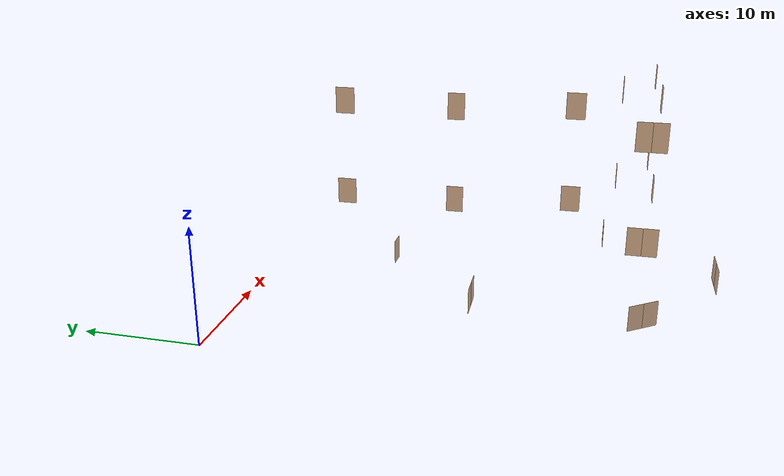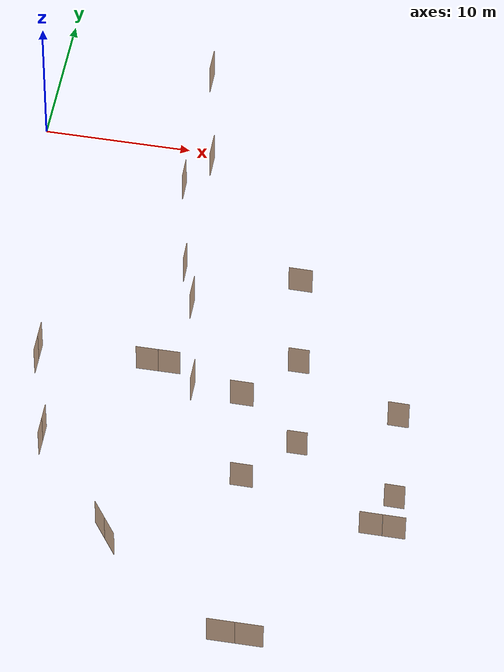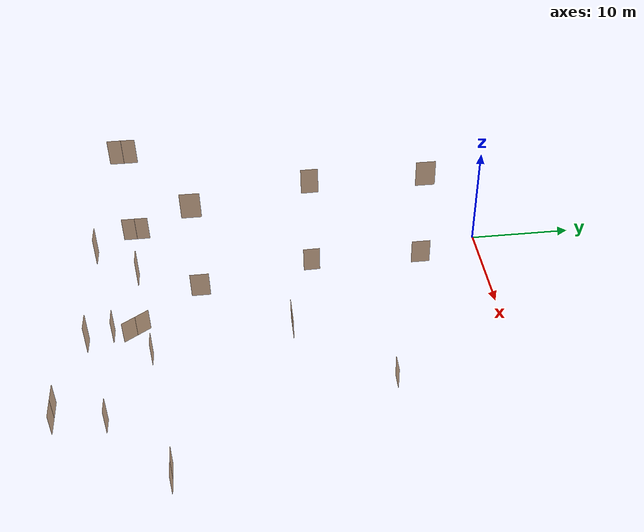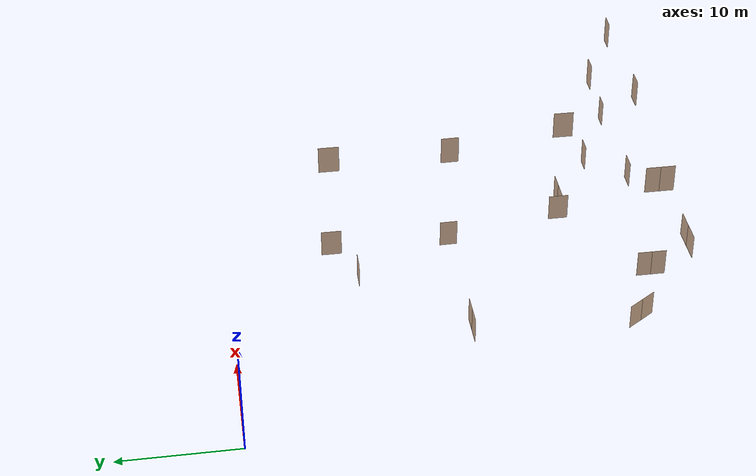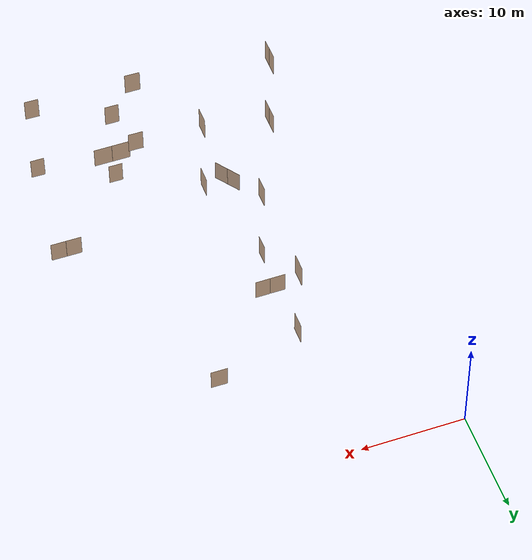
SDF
<sdf version="1.7">
 <world name="world">
  <physics type="ode">
   <max_step_size>0.001</max_step_size>
   <real_time_update_rate>1000</real_time_update_rate>
   <ode>
    <solver><iters>150</iters><sor>1.3</sor></solver>
    <constraints><erp>0.2</erp><cfm>0.0</cfm></constraints>
   </ode>
  </physics>
  <scene><ambient>0.8 0.8 0.8 1.0</ambient><background>0 0 0</background><grid>false</grid></scene>
  <include><uri>model://sun</uri></include>
  <model name="L1_door1">
   <pose>10.753654762321071 -33.79999264551465 0.0 0 0 2.1904910296829736</pose>
   <link name="right">
    <pose>0.7204413525969184 0 1.11 0 0 0</pose>
    <visual name="right_visual">
     <geometry><box><size>1.4308827051938369 0.03 2.2</size></box></geometry>
     <material><ambient>0.5 0.25 0 0.6</ambient><diffuse>0.5 0.25 0 0.6</diffuse></material>
    </visual>
    <inertial>
     <mass>50.0</mass>
     <inertia><ixx>20.17041666666667</ixx><iyy>28.69760548342847</iyy><izz>8.534688816761804</izz></inertia>
    </inertial>
   </link>
   <joint name="right_joint" type="revolute">
    <parent>world</parent>
    <child>right</child>
    <axis><xyz>0 0 1</xyz><limit><lower>0</lower><upper>1.57</upper></limit></axis>
    <pose>0.7204413525969184 0 0 0 0 0</pose>
   </joint>
   <link name="left">
    <pose>-0.7204413525969184 0 1.11 0 0 0</pose>
    <visual name="left_visual">
     <geometry><box><size>1.4308827051938369 0.03 2.2</size></box></geometry>
     <material><ambient>0.5 0.25 0 0.6</ambient><diffuse>0.5 0.25 0 0.6</diffuse></material>
    </visual>
    <inertial>
     <mass>50.0</mass>
     <inertia><ixx>20.17041666666667</ixx><iyy>28.69760548342847</iyy><izz>8.534688816761804</izz></inertia>
    </inertial>
   </link>
   <joint name="left_joint" type="revolute">
    <parent>world</parent>
    <child>left</child>
    <axis><xyz>0 0 1</xyz><limit><lower>-1.57</lower><upper>0</upper></limit></axis>
    <pose>-0.7204413525969184 0 0 0 0 0</pose>
   </joint>
  </model>
  <model name="L1_door2">
   <pose>11.515053553551752 -19.600764056030513 0.0 0 0 -3.1369488994516814</pose>
   <link name="right">
    <pose>0.7374085791900343 0 1.11 0 0 0</pose>
    <visual name="right_visual">
     <geometry><box><size>1.4648171583800687 0.03 2.2</size></box></geometry>
     <material><ambient>0.5 0.25 0 0.6</ambient><diffuse>0.5 0.25 0 0.6</diffuse></material>
    </visual>
    <inertial>
     <mass>50.0</mass>
     <inertia><ixx>20.17041666666667</ixx><iyy>29.107038781186084</iyy><izz>8.944122114519415</izz></inertia>
    </inertial>
   </link>
   <joint name="right_joint" type="prismatic">
    <parent>world</parent>
    <child>right</child>
    <axis>
     <xyz>1 0 0</xyz>
     <limit><lower>0.0</lower><upper>1.4748171583800687</upper><effort>500.0</effort></limit>
    </axis>
   </joint>
   <link name="left">
    <pose>-0.7374085791900343 0 1.11 0 0 0</pose>
    <visual name="left_visual">
     <geometry><box><size>1.4648171583800687 0.03 2.2</size></box></geometry>
     <material><ambient>0.5 0.25 0 0.6</ambient><diffuse>0.5 0.25 0 0.6</diffuse></material>
    </visual>
    <inertial>
     <mass>50.0</mass>
     <inertia><ixx>20.17041666666667</ixx><iyy>29.107038781186084</iyy><izz>8.944122114519415</izz></inertia>
    </inertial>
   </link>
   <joint name="left_joint" type="prismatic">
    <parent>world</parent>
    <child>left</child>
    <axis>
     <xyz>1 0 0</xyz>
     <limit><lower>-1.4748171583800687</lower><upper>0.0</upper><effort>500.0</effort></limit>
    </axis>
   </joint>
  </model>
  <model name="L1_door3">
   <pose>20.334155710474544 -40.40725483879361 0.0 0 0 -3.137402798278724</pose>
   <link name="right">
    <pose>0.9069965354571369 0 1.11 0 0 0</pose>
    <visual name="right_visual">
     <geometry><box><size>1.8039930709142737 0.03 2.2</size></box></geometry>
     <material><ambient>0.5 0.25 0 0.6</ambient><diffuse>0.5 0.25 0 0.6</diffuse></material>
    </visual>
    <inertial>
     <mass>50.0</mass>
     <inertia><ixx>20.17041666666667</ixx><iyy>33.726629166277974</iyy><izz>13.563712499611302</izz></inertia>
    </inertial>
   </link>
   <joint name="right_joint" type="prismatic">
    <parent>world</parent>
    <child>right</child>
    <axis>
     <xyz>1 0 0</xyz>
     <limit><lower>0.0</lower><upper>1.8139930709142738</upper><effort>500.0</effort></limit>
    </axis>
   </joint>
   <link name="left">
    <pose>-0.9069965354571369 0 1.11 0 0 0</pose>
    <visual name="left_visual">
     <geometry><box><size>1.8039930709142737 0.03 2.2</size></box></geometry>
     <material><ambient>0.5 0.25 0 0.6</ambient><diffuse>0.5 0.25 0 0.6</diffuse></material>
    </visual>
    <inertial>
     <mass>50.0</mass>
     <inertia><ixx>20.17041666666667</ixx><iyy>33.726629166277974</iyy><izz>13.563712499611302</izz></inertia>
    </inertial>
   </link>
   <joint name="left_joint" type="prismatic">
    <parent>world</parent>
    <child>left</child>
    <axis>
     <xyz>1 0 0</xyz>
     <limit><lower>-1.8139930709142738</lower><upper>0.0</upper><effort>500.0</effort></limit>
    </axis>
   </joint>
  </model>
  <model name="L1_door4">
   <pose>19.549120677562087 -11.10939551168469 0.0 0 0 -0.009497018345977264</pose>
   <link name="right">
    <pose>0 0 1.11 0 0 0</pose>
    <visual name="right_visual">
     <geometry><box><size>1.5905993122484277 0.03 2.2</size></box></geometry>
     <material><ambient>0.5 0.25 0 0.6</ambient><diffuse>0.5 0.25 0 0.6</diffuse></material>
    </visual>
    <inertial>
     <mass>50.0</mass>
     <inertia><ixx>20.17041666666667</ixx><iyy>30.70835905052155</iyy><izz>10.545442383854882</izz></inertia>
    </inertial>
   </link>
   <joint name="right_joint" type="revolute">
    <parent>world</parent>
    <child>right</child>
    <axis><xyz>0 0 1</xyz><limit><lower>0</lower><upper>1.57</upper></limit></axis>
    <pose>0.8002996561242138 0 0 0 0 0</pose>
   </joint>
  </model>
  <model name="L1_door5">
   <pose>28.079493196697264 -30.43738230505557 0.0 0 0 -0.0023958500301941633</pose>
   <link name="right">
    <pose>0.7494993011996198 0 1.11 0 0 0</pose>
    <visual name="right_visual">
     <geometry><box><size>1.4889986023992396 0.03 2.2</size></box></geometry>
     <material><ambient>0.5 0.25 0 0.6</ambient><diffuse>0.5 0.25 0 0.6</diffuse></material>
    </visual>
    <inertial>
     <mass>50.0</mass>
     <inertia><ixx>20.17041666666667</ixx><iyy>29.404653491445373</iyy><izz>9.241736824778705</izz></inertia>
    </inertial>
   </link>
   <joint name="right_joint" type="prismatic">
    <parent>world</parent>
    <child>right</child>
    <axis>
     <xyz>1 0 0</xyz>
     <limit><lower>0.0</lower><upper>1.4989986023992397</upper><effort>500.0</effort></limit>
    </axis>
   </joint>
   <link name="left">
    <pose>-0.7494993011996198 0 1.11 0 0 0</pose>
    <visual name="left_visual">
     <geometry><box><size>1.4889986023992396 0.03 2.2</size></box></geometry>
     <material><ambient>0.5 0.25 0 0.6</ambient><diffuse>0.5 0.25 0 0.6</diffuse></material>
    </visual>
    <inertial>
     <mass>50.0</mass>
     <inertia><ixx>20.17041666666667</ixx><iyy>29.404653491445373</iyy><izz>9.241736824778705</izz></inertia>
    </inertial>
   </link>
   <joint name="left_joint" type="prismatic">
    <parent>world</parent>
    <child>left</child>
    <axis>
     <xyz>1 0 0</xyz>
     <limit><lower>-1.4989986023992397</lower><upper>0.0</upper><effort>500.0</effort></limit>
    </axis>
   </joint>
  </model>
  <model name="L2_door2">
   <pose>6.76857286388343 -32.90682600516501 8.0 0 0 1.571612558028263</pose>
   <link name="right">
    <pose>0.5675078680191911 0 1.11 0 0 0</pose>
    <visual name="right_visual">
     <geometry><box><size>1.1250157360383821 0.03 2.2</size></box></geometry>
     <material><ambient>0.5 0.25 0 0.6</ambient><diffuse>0.5 0.25 0 0.6</diffuse></material>
    </visual>
    <inertial>
     <mass>50.0</mass>
     <inertia><ixx>20.17041666666667</ixx><iyy>25.44025169305827</iyy><izz>5.277335026391595</izz></inertia>
    </inertial>
   </link>
   <joint name="right_joint" type="revolute">
    <parent>world</parent>
    <child>right</child>
    <axis><xyz>0 0 -1</xyz><limit><lower>0</lower><upper>1.57</upper></limit></axis>
    <pose>0.5675078680191911 0 0 0 0 0</pose>
   </joint>
   <link name="left">
    <pose>-0.5675078680191911 0 1.11 0 0 0</pose>
    <visual name="left_visual">
     <geometry><box><size>1.1250157360383821 0.03 2.2</size></box></geometry>
     <material><ambient>0.5 0.25 0 0.6</ambient><diffuse>0.5 0.25 0 0.6</diffuse></material>
    </visual>
    <inertial>
     <mass>50.0</mass>
     <inertia><ixx>20.17041666666667</ixx><iyy>25.44025169305827</iyy><izz>5.277335026391595</izz></inertia>
    </inertial>
   </link>
   <joint name="left_joint" type="revolute">
    <parent>world</parent>
    <child>left</child>
    <axis><xyz>0 0 -1</xyz><limit><lower>-1.57</lower><upper>0</upper></limit></axis>
    <pose>-0.5675078680191911 0 0 0 0 0</pose>
   </joint>
  </model>
  <model name="L2_door5">
   <pose>19.62055855578882 -34.21478433126707 8.0 0 0 3.1365461417546308</pose>
   <link name="right">
    <pose>0 0 1.11 0 0 0</pose>
    <visual name="right_visual">
     <geometry><box><size>1.4278667928054123 0.03 2.2</size></box></geometry>
     <material><ambient>0.5 0.25 0 0.6</ambient><diffuse>0.5 0.25 0 0.6</diffuse></material>
    </visual>
    <inertial>
     <mass>50.0</mass>
     <inertia><ixx>20.17041666666667</ixx><iyy>28.661681574985064</iyy><izz>8.498764908318392</izz></inertia>
    </inertial>
   </link>
   <joint name="right_joint" type="revolute">
    <parent>world</parent>
    <child>right</child>
    <axis><xyz>0 0 -1</xyz><limit><lower>0</lower><upper>1.57</upper></limit></axis>
    <pose>0.7189333964027061 0 0 0 0 0</pose>
   </joint>
  </model>
  <model name="L2_door9">
   <pose>13.018848337594756 -17.76158217016259 8.0 0 0 1.5874688733681936</pose>
   <link name="right">
    <pose>0 0 1.11 0 0 0</pose>
    <visual name="right_visual">
     <geometry><box><size>1.382945881897145 0.03 2.2</size></box></geometry>
     <material><ambient>0.5 0.25 0 0.6</ambient><diffuse>0.5 0.25 0 0.6</diffuse></material>
    </visual>
    <inertial>
     <mass>50.0</mass>
     <inertia><ixx>20.17041666666667</ixx><iyy>28.13558046773447</iyy><izz>7.9726638010677995</izz></inertia>
    </inertial>
   </link>
   <joint name="right_joint" type="revolute">
    <parent>world</parent>
    <child>right</child>
    <axis><xyz>0 0 -1</xyz><limit><lower>0</lower><upper>1.57</upper></limit></axis>
    <pose>0.6964729409485725 0 0 0 0 0</pose>
   </joint>
  </model>
  <model name="L2_door11">
   <pose>13.070832545372092 -8.29507317951618 8.0 0 0 1.571612558028263</pose>
   <link name="right">
    <pose>0 0 1.11 0 0 0</pose>
    <visual name="right_visual">
     <geometry><box><size>1.5950330216253457 0.03 2.2</size></box></geometry>
     <material><ambient>0.5 0.25 0 0.6</ambient><diffuse>0.5 0.25 0 0.6</diffuse></material>
    </visual>
    <inertial>
     <mass>50.0</mass>
     <inertia><ixx>20.17041666666667</ixx><iyy>30.767209750313672</iyy><izz>10.604293083647002</izz></inertia>
    </inertial>
   </link>
   <joint name="right_joint" type="revolute">
    <parent>world</parent>
    <child>right</child>
    <axis><xyz>0 0 -1</xyz><limit><lower>0</lower><upper>1.57</upper></limit></axis>
    <pose>0.8025165108126728 0 0 0 0 0</pose>
   </joint>
  </model>
  <model name="L2_door12">
   <pose>15.28470442617677 -27.2761317707633 8.0 0 0 1.571612558028262</pose>
   <link name="right">
    <pose>0 0 1.11 0 0 0</pose>
    <visual name="right_visual">
     <geometry><box><size>1.5658659299508506 0.03 2.2</size></box></geometry>
     <material><ambient>0.5 0.25 0 0.6</ambient><diffuse>0.5 0.25 0 0.6</diffuse></material>
    </visual>
    <inertial>
     <mass>50.0</mass>
     <inertia><ixx>20.17041666666667</ixx><iyy>30.38306712742018</iyy><izz>10.22015046075351</izz></inertia>
    </inertial>
   </link>
   <joint name="right_joint" type="revolute">
    <parent>world</parent>
    <child>right</child>
    <axis><xyz>0 0 1</xyz><limit><lower>0</lower><upper>1.57</upper></limit></axis>
    <pose>0.7879329649754253 0 0 0 0 0</pose>
   </joint>
  </model>
  <model name="L2_door14">
   <pose>22.582882547846204 -31.092638612981972 8.0 0 0 3.137779488569298</pose>
   <link name="right">
    <pose>0 0 1.11 0 0 0</pose>
    <visual name="right_visual">
     <geometry><box><size>1.2889329745237348 0.03 2.2</size></box></geometry>
     <material><ambient>0.5 0.25 0 0.6</ambient><diffuse>0.5 0.25 0 0.6</diffuse></material>
    </visual>
    <inertial>
     <mass>50.0</mass>
     <inertia><ixx>20.17041666666667</ixx><iyy>27.088950886727517</iyy><izz>6.926034220060845</izz></inertia>
    </inertial>
   </link>
   <joint name="right_joint" type="revolute">
    <parent>world</parent>
    <child>right</child>
    <axis><xyz>0 0 1</xyz><limit><lower>0</lower><upper>1.57</upper></limit></axis>
    <pose>0.6494664872618674 0 0 0 0 0</pose>
   </joint>
  </model>
  <model name="L2_door15">
   <pose>29.19689685453295 -34.1844883615378 8.0 0 0 3.1287318603676484</pose>
   <link name="right">
    <pose>0 0 1.11 0 0 0</pose>
    <visual name="right_visual">
     <geometry><box><size>1.2884785147293154 0.03 2.2</size></box></geometry>
     <material><ambient>0.5 0.25 0 0.6</ambient><diffuse>0.5 0.25 0 0.6</diffuse></material>
    </visual>
    <inertial>
     <mass>50.0</mass>
     <inertia><ixx>20.17041666666667</ixx><iyy>27.0840703454961</iyy><izz>6.921153678829428</izz></inertia>
    </inertial>
   </link>
   <joint name="right_joint" type="revolute">
    <parent>world</parent>
    <child>right</child>
    <axis><xyz>0 0 -1</xyz><limit><lower>0</lower><upper>1.57</upper></limit></axis>
    <pose>0.6492392573646577 0 0 0 0 0</pose>
   </joint>
  </model>
  <model name="L3_door2">
   <pose>6.76857286388343 -32.90682600516501 16.0 0 0 1.571612558028263</pose>
   <link name="right">
    <pose>0.5675078680191911 0 1.11 0 0 0</pose>
    <visual name="right_visual">
     <geometry><box><size>1.1250157360383821 0.03 2.2</size></box></geometry>
     <material><ambient>0.5 0.25 0 0.6</ambient><diffuse>0.5 0.25 0 0.6</diffuse></material>
    </visual>
    <inertial>
     <mass>50.0</mass>
     <inertia><ixx>20.17041666666667</ixx><iyy>25.44025169305827</iyy><izz>5.277335026391595</izz></inertia>
    </inertial>
   </link>
   <joint name="right_joint" type="revolute">
    <parent>world</parent>
    <child>right</child>
    <axis><xyz>0 0 -1</xyz><limit><lower>0</lower><upper>1.57</upper></limit></axis>
    <pose>0.5675078680191911 0 0 0 0 0</pose>
   </joint>
   <link name="left">
    <pose>-0.5675078680191911 0 1.11 0 0 0</pose>
    <visual name="left_visual">
     <geometry><box><size>1.1250157360383821 0.03 2.2</size></box></geometry>
     <material><ambient>0.5 0.25 0 0.6</ambient><diffuse>0.5 0.25 0 0.6</diffuse></material>
    </visual>
    <inertial>
     <mass>50.0</mass>
     <inertia><ixx>20.17041666666667</ixx><iyy>25.44025169305827</iyy><izz>5.277335026391595</izz></inertia>
    </inertial>
   </link>
   <joint name="left_joint" type="revolute">
    <parent>world</parent>
    <child>left</child>
    <axis><xyz>0 0 -1</xyz><limit><lower>-1.57</lower><upper>0</upper></limit></axis>
    <pose>-0.5675078680191911 0 0 0 0 0</pose>
   </joint>
  </model>
  <model name="L3_door5">
   <pose>19.62055855578882 -34.21478433126707 16.0 0 0 3.1365461417546308</pose>
   <link name="right">
    <pose>0 0 1.11 0 0 0</pose>
    <visual name="right_visual">
     <geometry><box><size>1.4278667928054123 0.03 2.2</size></box></geometry>
     <material><ambient>0.5 0.25 0 0.6</ambient><diffuse>0.5 0.25 0 0.6</diffuse></material>
    </visual>
    <inertial>
     <mass>50.0</mass>
     <inertia><ixx>20.17041666666667</ixx><iyy>28.661681574985064</iyy><izz>8.498764908318392</izz></inertia>
    </inertial>
   </link>
   <joint name="right_joint" type="revolute">
    <parent>world</parent>
    <child>right</child>
    <axis><xyz>0 0 -1</xyz><limit><lower>0</lower><upper>1.57</upper></limit></axis>
    <pose>0.7189333964027061 0 0 0 0 0</pose>
   </joint>
  </model>
  <model name="L3_door9">
   <pose>13.018848337594756 -17.76158217016259 16.0 0 0 1.5874688733681936</pose>
   <link name="right">
    <pose>0 0 1.11 0 0 0</pose>
    <visual name="right_visual">
     <geometry><box><size>1.382945881897145 0.03 2.2</size></box></geometry>
     <material><ambient>0.5 0.25 0 0.6</ambient><diffuse>0.5 0.25 0 0.6</diffuse></material>
    </visual>
    <inertial>
     <mass>50.0</mass>
     <inertia><ixx>20.17041666666667</ixx><iyy>28.13558046773447</iyy><izz>7.9726638010677995</izz></inertia>
    </inertial>
   </link>
   <joint name="right_joint" type="revolute">
    <parent>world</parent>
    <child>right</child>
    <axis><xyz>0 0 -1</xyz><limit><lower>0</lower><upper>1.57</upper></limit></axis>
    <pose>0.6964729409485725 0 0 0 0 0</pose>
   </joint>
  </model>
  <model name="L3_door11">
   <pose>13.070832545372092 -8.29507317951618 16.0 0 0 1.571612558028263</pose>
   <link name="right">
    <pose>0 0 1.11 0 0 0</pose>
    <visual name="right_visual">
     <geometry><box><size>1.5950330216253457 0.03 2.2</size></box></geometry>
     <material><ambient>0.5 0.25 0 0.6</ambient><diffuse>0.5 0.25 0 0.6</diffuse></material>
    </visual>
    <inertial>
     <mass>50.0</mass>
     <inertia><ixx>20.17041666666667</ixx><iyy>30.767209750313672</iyy><izz>10.604293083647002</izz></inertia>
    </inertial>
   </link>
   <joint name="right_joint" type="revolute">
    <parent>world</parent>
    <child>right</child>
    <axis><xyz>0 0 -1</xyz><limit><lower>0</lower><upper>1.57</upper></limit></axis>
    <pose>0.8025165108126728 0 0 0 0 0</pose>
   </joint>
  </model>
  <model name="L3_door12">
   <pose>15.28470442617677 -27.2761317707633 16.0 0 0 1.571612558028262</pose>
   <link name="right">
    <pose>0 0 1.11 0 0 0</pose>
    <visual name="right_visual">
     <geometry><box><size>1.5658659299508506 0.03 2.2</size></box></geometry>
     <material><ambient>0.5 0.25 0 0.6</ambient><diffuse>0.5 0.25 0 0.6</diffuse></material>
    </visual>
    <inertial>
     <mass>50.0</mass>
     <inertia><ixx>20.17041666666667</ixx><iyy>30.38306712742018</iyy><izz>10.22015046075351</izz></inertia>
    </inertial>
   </link>
   <joint name="right_joint" type="revolute">
    <parent>world</parent>
    <child>right</child>
    <axis><xyz>0 0 1</xyz><limit><lower>0</lower><upper>1.57</upper></limit></axis>
    <pose>0.7879329649754253 0 0 0 0 0</pose>
   </joint>
  </model>
  <model name="L3_door14">
   <pose>22.582882547846204 -31.092638612981972 16.0 0 0 3.137779488569298</pose>
   <link name="right">
    <pose>0 0 1.11 0 0 0</pose>
    <visual name="right_visual">
     <geometry><box><size>1.2889329745237348 0.03 2.2</size></box></geometry>
     <material><ambient>0.5 0.25 0 0.6</ambient><diffuse>0.5 0.25 0 0.6</diffuse></material>
    </visual>
    <inertial>
     <mass>50.0</mass>
     <inertia><ixx>20.17041666666667</ixx><iyy>27.088950886727517</iyy><izz>6.926034220060845</izz></inertia>
    </inertial>
   </link>
   <joint name="right_joint" type="revolute">
    <parent>world</parent>
    <child>right</child>
    <axis><xyz>0 0 1</xyz><limit><lower>0</lower><upper>1.57</upper></limit></axis>
    <pose>0.6494664872618674 0 0 0 0 0</pose>
   </joint>
  </model>
  <model name="L3_door15">
   <pose>29.19689685453295 -34.1844883615378 16.0 0 0 3.1287318603676484</pose>
   <link name="right">
    <pose>0 0 1.11 0 0 0</pose>
    <visual name="right_visual">
     <geometry><box><size>1.2884785147293154 0.03 2.2</size></box></geometry>
     <material><ambient>0.5 0.25 0 0.6</ambient><diffuse>0.5 0.25 0 0.6</diffuse></material>
    </visual>
    <inertial>
     <mass>50.0</mass>
     <inertia><ixx>20.17041666666667</ixx><iyy>27.0840703454961</iyy><izz>6.921153678829428</izz></inertia>
    </inertial>
   </link>
   <joint name="right_joint" type="revolute">
    <parent>world</parent>
    <child>right</child>
    <axis><xyz>0 0 -1</xyz><limit><lower>0</lower><upper>1.57</upper></limit></axis>
    <pose>0.6492392573646577 0 0 0 0 0</pose>
   </joint>
  </model>
 </world>
</sdf>
